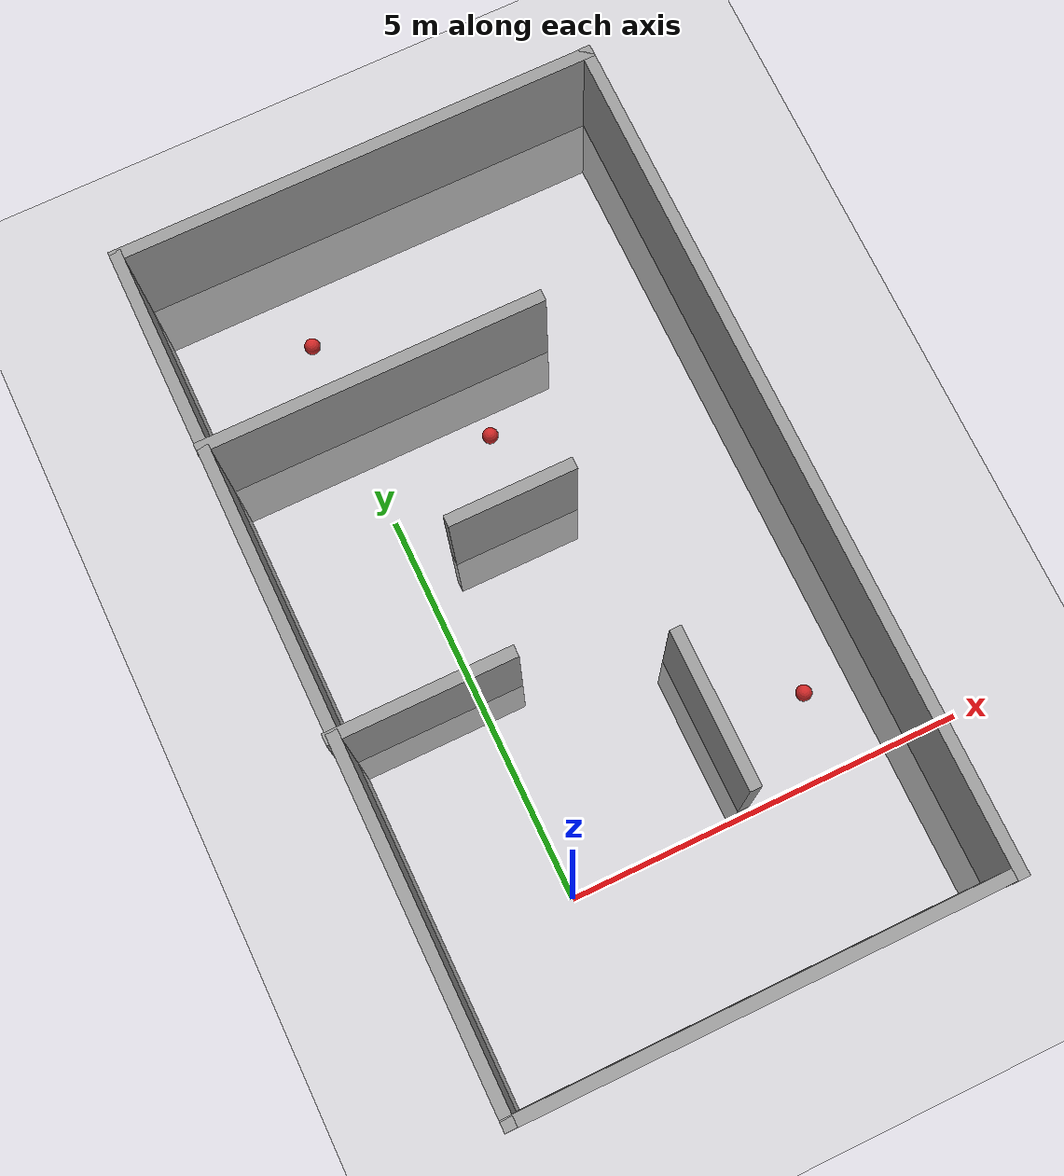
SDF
<sdf version="1.7">
 <world name="default">
  <light name="sun" type="directional">
   <pose>0 0 10 0 -0 0</pose>
   <diffuse>0.8 0.8 0.8 1</diffuse>
   <specular>0.2 0.2 0.2 1</specular>
   <attenuation>
    <range>1000</range>
    <constant>0.9</constant>
    <linear>0.01</linear>
    <quadratic>0.001</quadratic>
   </attenuation>
   <direction>-0.5 0.1 -0.9</direction>
   <spot><inner_angle>0</inner_angle><outer_angle>0</outer_angle><falloff>0</falloff></spot>
  </light>
  <model name="ground_plane">
   <static>1</static>
   <link name="link">
    <collision name="collision">
     <geometry><plane><normal>0 0 1</normal><size>100 100</size></plane></geometry>
     <surface><friction><ode><mu>100</mu><mu2>50</mu2></ode></friction></surface>
    </collision>
    <visual name="visual">
     <cast_shadows>0</cast_shadows>
     <geometry><plane><normal>0 0 1</normal><size>100 100</size></plane></geometry>
     <material>
      <script><uri>file://media/materials/scripts/gazebo.material</uri><name>Gazebo/Grey</name></script>
     </material>
    </visual>
   </link>
  </model>
  <gravity>0 0 -9.8</gravity>
  <magnetic_field>6e-06 2.3e-05 -4.2e-05</magnetic_field>
  <atmosphere type="adiabatic"/>
  <physics name="default_physics" default="0" type="ode">
   <max_step_size>0.001</max_step_size>
   <real_time_factor>1</real_time_factor>
   <real_time_update_rate>1000</real_time_update_rate>
  </physics>
  <scene><ambient>0.4 0.4 0.4 1</ambient><background>0.7 0.7 0.7 1</background><shadows>1</shadows></scene>
  <audio><device>default</device></audio>
  <spherical_coordinates>
   <surface_model>EARTH_WGS84</surface_model>
   <latitude_deg>0</latitude_deg>
   <longitude_deg>0</longitude_deg>
   <elevation>0</elevation>
   <heading_deg>0</heading_deg>
  </spherical_coordinates>
  <model name="maze_simple_0">
   <link name="Wall_11">
    <pose>-0.101906 0.822885 0 0 -0 0</pose>
    <inertial>
     <inertia><ixx>0</ixx><ixy>0</ixy><ixz>0</ixz><iyy>0</iyy><iyz>0</iyz><izz>0</izz></inertia>
     <mass>0</mass>
    </inertial>
    <visual name="Wall_11_Visual">
     <pose>0 0 0.15 0 -0 0</pose>
     <geometry><box><size>1.61952 0.15 3</size></box></geometry>
     <material>
      <script><uri>file://media/materials/scripts/gazebo.material</uri><name>Gazebo/Grey</name></script>
      <ambient>1 1 1 1</ambient>
      <shader type="pixel"/>
     </material>
     <meta><layer>0</layer></meta>
    </visual>
    <collision name="Wall_11_Collision">
     <pose>0 0 0.15 0 -0 0</pose>
     <geometry><box><size>1.61952 0.15 3</size></box></geometry>
     <surface>
      <friction>
       <ode><mu>1</mu><mu2>1</mu2><fdir1>0 0 0</fdir1><slip1>0</slip1><slip2>0</slip2></ode>
       <torsional>
        <coefficient>1</coefficient>
        <patch_radius>0</patch_radius>
        <surface_radius>0</surface_radius>
        <use_patch_radius>1</use_patch_radius>
        <ode><slip>0</slip></ode>
       </torsional>
      </friction>
      <bounce><restitution_coefficient>0</restitution_coefficient><threshold>1e+06</threshold></bounce>
      <contact>
       <collide_without_contact>0</collide_without_contact>
       <collide_without_contact_bitmask>1</collide_without_contact_bitmask>
       <collide_bitmask>1</collide_bitmask>
       <ode>
        <soft_cfm>0</soft_cfm>
        <soft_erp>0.2</soft_erp>
        <kp>1e+13</kp>
        <kd>1</kd>
        <max_vel>0.01</max_vel>
        <min_depth>0</min_depth>
       </ode>
       <bullet>
        <split_impulse>1</split_impulse>
        <split_impulse_penetration_threshold>-0.01</split_impulse_penetration_threshold>
        <soft_cfm>0</soft_cfm>
        <soft_erp>0.2</soft_erp>
        <kp>1e+13</kp>
        <kd>1</kd>
       </bullet>
      </contact>
     </surface>
    </collision>
   </link>
   <link name="Wall_12">
    <pose>0.884715 -2.38987 -0 0 0 -1.5708</pose>
    <visual name="Wall_12_Visual">
     <pose>0 0 0.15 0 -0 0</pose>
     <geometry><box><size>2 0.15 3</size></box></geometry>
     <material>
      <script><uri>file://media/materials/scripts/gazebo.material</uri><name>Gazebo/Grey</name></script>
      <ambient>1 1 1 1</ambient>
      <shader type="pixel"/>
     </material>
     <meta><layer>0</layer></meta>
    </visual>
    <collision name="Wall_12_Collision">
     <pose>0 0 0.15 0 -0 0</pose>
     <geometry><box><size>2 0.15 3</size></box></geometry>
     <surface>
      <friction>
       <ode><mu>1</mu><mu2>1</mu2><fdir1>0 0 0</fdir1><slip1>0</slip1><slip2>0</slip2></ode>
       <torsional>
        <coefficient>1</coefficient>
        <patch_radius>0</patch_radius>
        <surface_radius>0</surface_radius>
        <use_patch_radius>1</use_patch_radius>
        <ode><slip>0</slip></ode>
       </torsional>
      </friction>
      <bounce><restitution_coefficient>0</restitution_coefficient><threshold>1e+06</threshold></bounce>
      <contact>
       <collide_without_contact>0</collide_without_contact>
       <collide_without_contact_bitmask>1</collide_without_contact_bitmask>
       <collide_bitmask>1</collide_bitmask>
       <ode>
        <soft_cfm>0</soft_cfm>
        <soft_erp>0.2</soft_erp>
        <kp>1e+13</kp>
        <kd>1</kd>
        <max_vel>0.01</max_vel>
        <min_depth>0</min_depth>
       </ode>
       <bullet>
        <split_impulse>1</split_impulse>
        <split_impulse_penetration_threshold>-0.01</split_impulse_penetration_threshold>
        <soft_cfm>0</soft_cfm>
        <soft_erp>0.2</soft_erp>
        <kp>1e+13</kp>
        <kd>1</kd>
       </bullet>
      </contact>
     </surface>
    </collision>
   </link>
   <link name="Wall_16">
    <pose>-0.935679 2.8242 -0 0 -0 0</pose>
    <inertial>
     <inertia><ixx>0</ixx><ixy>0</ixy><ixz>0</ixz><iyy>0</iyy><iyz>0</iyz><izz>0</izz></inertia>
     <mass>0</mass>
    </inertial>
    <visual name="Wall_16_Visual">
     <pose>0 0 0.15 0 -0 0</pose>
     <geometry><box><size>4.37775 0.15 3</size></box></geometry>
     <material>
      <script><uri>file://media/materials/scripts/gazebo.material</uri><name>Gazebo/Grey</name></script>
      <ambient>1 1 1 1</ambient>
      <shader type="pixel"/>
     </material>
     <meta><layer>0</layer></meta>
    </visual>
    <collision name="Wall_16_Collision">
     <pose>0 0 0.15 0 -0 0</pose>
     <geometry><box><size>4.37775 0.15 3</size></box></geometry>
     <surface>
      <friction>
       <ode><mu>1</mu><mu2>1</mu2><fdir1>0 0 0</fdir1><slip1>0</slip1><slip2>0</slip2></ode>
       <torsional>
        <coefficient>1</coefficient>
        <patch_radius>0</patch_radius>
        <surface_radius>0</surface_radius>
        <use_patch_radius>1</use_patch_radius>
        <ode><slip>0</slip></ode>
       </torsional>
      </friction>
      <bounce><restitution_coefficient>0</restitution_coefficient><threshold>1e+06</threshold></bounce>
      <contact>
       <collide_without_contact>0</collide_without_contact>
       <collide_without_contact_bitmask>1</collide_without_contact_bitmask>
       <collide_bitmask>1</collide_bitmask>
       <ode>
        <soft_cfm>0</soft_cfm>
        <soft_erp>0.2</soft_erp>
        <kp>1e+13</kp>
        <kd>1</kd>
        <max_vel>0.01</max_vel>
        <min_depth>0</min_depth>
       </ode>
       <bullet>
        <split_impulse>1</split_impulse>
        <split_impulse_penetration_threshold>-0.01</split_impulse_penetration_threshold>
        <soft_cfm>0</soft_cfm>
        <soft_erp>0.2</soft_erp>
        <kp>1e+13</kp>
        <kd>1</kd>
       </bullet>
      </contact>
     </surface>
    </collision>
   </link>
   <link name="Wall_4">
    <pose>0.00675 -5.4147 -0 0 -0 0</pose>
    <visual name="Wall_4_Visual">
     <pose>0 0 0.15 0 -0 0</pose>
     <geometry><box><size>6.25 0.15 3</size></box></geometry>
     <material>
      <script><uri>file://media/materials/scripts/gazebo.material</uri><name>Gazebo/Grey</name></script>
      <ambient>1 1 1 1</ambient>
      <shader type="pixel"/>
     </material>
     <meta><layer>0</layer></meta>
    </visual>
    <collision name="Wall_4_Collision">
     <pose>0 0 0.15 0 -0 0</pose>
     <geometry><box><size>6.25 0.15 3</size></box></geometry>
     <surface>
      <friction>
       <ode><mu>1</mu><mu2>1</mu2><fdir1>0 0 0</fdir1><slip1>0</slip1><slip2>0</slip2></ode>
       <torsional>
        <coefficient>1</coefficient>
        <patch_radius>0</patch_radius>
        <surface_radius>0</surface_radius>
        <use_patch_radius>1</use_patch_radius>
        <ode><slip>0</slip></ode>
       </torsional>
      </friction>
      <bounce><restitution_coefficient>0</restitution_coefficient><threshold>1e+06</threshold></bounce>
      <contact>
       <collide_without_contact>0</collide_without_contact>
       <collide_without_contact_bitmask>1</collide_without_contact_bitmask>
       <collide_bitmask>1</collide_bitmask>
       <ode>
        <soft_cfm>0</soft_cfm>
        <soft_erp>0.2</soft_erp>
        <kp>1e+13</kp>
        <kd>1</kd>
        <max_vel>0.01</max_vel>
        <min_depth>0</min_depth>
       </ode>
       <bullet>
        <split_impulse>1</split_impulse>
        <split_impulse_penetration_threshold>-0.01</split_impulse_penetration_threshold>
        <soft_cfm>0</soft_cfm>
        <soft_erp>0.2</soft_erp>
        <kp>1e+13</kp>
        <kd>1</kd>
       </bullet>
      </contact>
     </surface>
    </collision>
   </link>
   <link name="Wall_5">
    <pose>3.05675 0 0 0 -0 1.5708</pose>
    <inertial>
     <inertia><ixx>0</ixx><ixy>0</ixy><ixz>0</ixz><iyy>0</iyy><iyz>0</iyz><izz>0</izz></inertia>
     <mass>0</mass>
    </inertial>
    <visual name="Wall_5_Visual">
     <pose>0 0 0.15 0 -0 0</pose>
     <geometry><box><size>10.9958 0.15 3</size></box></geometry>
     <material>
      <script><uri>file://media/materials/scripts/gazebo.material</uri><name>Gazebo/Grey</name></script>
      <ambient>1 1 1 1</ambient>
      <shader type="pixel"/>
     </material>
     <meta><layer>0</layer></meta>
    </visual>
    <collision name="Wall_5_Collision">
     <pose>0 0 0.15 0 -0 0</pose>
     <geometry><box><size>10.9958 0.15 3</size></box></geometry>
     <surface>
      <friction>
       <ode><mu>1</mu><mu2>1</mu2><fdir1>0 0 0</fdir1><slip1>0</slip1><slip2>0</slip2></ode>
       <torsional>
        <coefficient>1</coefficient>
        <patch_radius>0</patch_radius>
        <surface_radius>0</surface_radius>
        <use_patch_radius>1</use_patch_radius>
        <ode><slip>0</slip></ode>
       </torsional>
      </friction>
      <bounce><restitution_coefficient>0</restitution_coefficient><threshold>1e+06</threshold></bounce>
      <contact>
       <collide_without_contact>0</collide_without_contact>
       <collide_without_contact_bitmask>1</collide_without_contact_bitmask>
       <collide_bitmask>1</collide_bitmask>
       <ode>
        <soft_cfm>0</soft_cfm>
        <soft_erp>0.2</soft_erp>
        <kp>1e+13</kp>
        <kd>1</kd>
        <max_vel>0.01</max_vel>
        <min_depth>0</min_depth>
       </ode>
       <bullet>
        <split_impulse>1</split_impulse>
        <split_impulse_penetration_threshold>-0.01</split_impulse_penetration_threshold>
        <soft_cfm>0</soft_cfm>
        <soft_erp>0.2</soft_erp>
        <kp>1e+13</kp>
        <kd>1</kd>
       </bullet>
      </contact>
     </surface>
    </collision>
   </link>
   <link name="Wall_6">
    <pose>0.006756 5.41697 -0 0 -0 3.14159</pose>
    <visual name="Wall_6_Visual">
     <pose>0 0 0.15 0 -0 0</pose>
     <geometry><box><size>6.25 0.15 3</size></box></geometry>
     <material>
      <script><uri>file://media/materials/scripts/gazebo.material</uri><name>Gazebo/Grey</name></script>
      <ambient>1 1 1 1</ambient>
      <shader type="pixel"/>
     </material>
     <meta><layer>0</layer></meta>
    </visual>
    <collision name="Wall_6_Collision">
     <pose>0 0 0.15 0 -0 0</pose>
     <geometry><box><size>6.25 0.15 3</size></box></geometry>
     <surface>
      <friction>
       <ode><mu>1</mu><mu2>1</mu2><fdir1>0 0 0</fdir1><slip1>0</slip1><slip2>0</slip2></ode>
       <torsional>
        <coefficient>1</coefficient>
        <patch_radius>0</patch_radius>
        <surface_radius>0</surface_radius>
        <use_patch_radius>1</use_patch_radius>
        <ode><slip>0</slip></ode>
       </torsional>
      </friction>
      <bounce><restitution_coefficient>0</restitution_coefficient><threshold>1e+06</threshold></bounce>
      <contact>
       <collide_without_contact>0</collide_without_contact>
       <collide_without_contact_bitmask>1</collide_without_contact_bitmask>
       <collide_bitmask>1</collide_bitmask>
       <ode>
        <soft_cfm>0</soft_cfm>
        <soft_erp>0.2</soft_erp>
        <kp>1e+13</kp>
        <kd>1</kd>
        <max_vel>0.01</max_vel>
        <min_depth>0</min_depth>
       </ode>
       <bullet>
        <split_impulse>1</split_impulse>
        <split_impulse_penetration_threshold>-0.01</split_impulse_penetration_threshold>
        <soft_cfm>0</soft_cfm>
        <soft_erp>0.2</soft_erp>
        <kp>1e+13</kp>
        <kd>1</kd>
       </bullet>
      </contact>
     </surface>
    </collision>
   </link>
   <link name="Wall_7">
    <pose>-3.04325 0 0 0 0 -1.5708</pose>
    <inertial>
     <inertia><ixx>0</ixx><ixy>0</ixy><ixz>0</ixz><iyy>0</iyy><iyz>0</iyz><izz>0</izz></inertia>
     <mass>0</mass>
    </inertial>
    <visual name="Wall_7_Visual">
     <pose>0 0 0.15 0 -0 0</pose>
     <geometry><box><size>10.9696 0.15 3</size></box></geometry>
     <material>
      <script><uri>file://media/materials/scripts/gazebo.material</uri><name>Gazebo/Grey</name></script>
      <ambient>1 1 1 1</ambient>
      <shader type="pixel"><normal_map>__default__</normal_map></shader>
      <diffuse>0.7 0.7 0.7 1</diffuse>
      <specular>0.01 0.01 0.01 1</specular>
      <emissive>0 0 0 1</emissive>
     </material>
     <meta><layer>0</layer></meta>
    </visual>
    <collision name="Wall_7_Collision">
     <pose>0 0 0.15 0 -0 0</pose>
     <geometry><box><size>11.8412 0.15 3</size></box></geometry>
     <surface>
      <friction>
       <ode><mu>1</mu><mu2>1</mu2><fdir1>0 0 0</fdir1><slip1>0</slip1><slip2>0</slip2></ode>
       <torsional>
        <coefficient>1</coefficient>
        <patch_radius>0</patch_radius>
        <surface_radius>0</surface_radius>
        <use_patch_radius>1</use_patch_radius>
        <ode><slip>0</slip></ode>
       </torsional>
      </friction>
      <bounce><restitution_coefficient>0</restitution_coefficient><threshold>1e+06</threshold></bounce>
      <contact>
       <collide_without_contact>0</collide_without_contact>
       <collide_without_contact_bitmask>1</collide_without_contact_bitmask>
       <collide_bitmask>1</collide_bitmask>
       <ode>
        <soft_cfm>0</soft_cfm>
        <soft_erp>0.2</soft_erp>
        <kp>1e+13</kp>
        <kd>1</kd>
        <max_vel>0.01</max_vel>
        <min_depth>0</min_depth>
       </ode>
       <bullet>
        <split_impulse>1</split_impulse>
        <split_impulse_penetration_threshold>-0.01</split_impulse_penetration_threshold>
        <soft_cfm>0</soft_cfm>
        <soft_erp>0.2</soft_erp>
        <kp>1e+13</kp>
        <kd>1</kd>
       </bullet>
      </contact>
     </surface>
    </collision>
   </link>
   <link name="Wall_9">
    <pose>-1.9867 -0.866433 -0 0 -0 0</pose>
    <inertial>
     <inertia><ixx>0</ixx><ixy>0</ixy><ixz>0</ixz><iyy>0</iyy><iyz>0</iyz><izz>0</izz></inertia>
     <mass>0</mass>
    </inertial>
    <visual name="Wall_9_Visual">
     <pose>0 0 0.15 0 -0 0</pose>
     <geometry><box><size>2.33116 0.15 3</size></box></geometry>
     <material>
      <script><uri>file://media/materials/scripts/gazebo.material</uri><name>Gazebo/Grey</name></script>
      <ambient>1 1 1 1</ambient>
      <shader type="pixel"/>
     </material>
     <meta><layer>0</layer></meta>
    </visual>
    <collision name="Wall_9_Collision">
     <pose>0 0 0.15 0 -0 0</pose>
     <geometry><box><size>2.33116 0.15 3</size></box></geometry>
     <surface>
      <friction>
       <ode><mu>1</mu><mu2>1</mu2><fdir1>0 0 0</fdir1><slip1>0</slip1><slip2>0</slip2></ode>
       <torsional>
        <coefficient>1</coefficient>
        <patch_radius>0</patch_radius>
        <surface_radius>0</surface_radius>
        <use_patch_radius>1</use_patch_radius>
        <ode><slip>0</slip></ode>
       </torsional>
      </friction>
      <bounce><restitution_coefficient>0</restitution_coefficient><threshold>1e+06</threshold></bounce>
      <contact>
       <collide_without_contact>0</collide_without_contact>
       <collide_without_contact_bitmask>1</collide_without_contact_bitmask>
       <collide_bitmask>1</collide_bitmask>
       <ode>
        <soft_cfm>0</soft_cfm>
        <soft_erp>0.2</soft_erp>
        <kp>1e+13</kp>
        <kd>1</kd>
        <max_vel>0.01</max_vel>
        <min_depth>0</min_depth>
       </ode>
       <bullet>
        <split_impulse>1</split_impulse>
        <split_impulse_penetration_threshold>-0.01</split_impulse_penetration_threshold>
        <soft_cfm>0</soft_cfm>
        <soft_erp>0.2</soft_erp>
        <kp>1e+13</kp>
        <kd>1</kd>
       </bullet>
      </contact>
     </surface>
    </collision>
   </link>
   <static>1</static>
   <pose>1.36318 3.47341 0 0 -0 0</pose>
  </model>
  <model name="red_unit_sphere">
   <link name="link">
    <inertial>
     <mass>1</mass>
     <inertia><ixx>0.1</ixx><ixy>0</ixy><ixz>0</ixz><iyy>0.1</iyy><iyz>0</iyz><izz>0.1</izz></inertia>
    </inertial>
    <visual name="visual">
     <geometry><sphere><radius>0.1</radius></sphere></geometry>
     <material>
      <script><name>Gazebo/Red</name><uri>file://media/materials/scripts/gazebo.material</uri></script>
      <shader type="pixel"><normal_map>__default__</normal_map></shader>
      <ambient>1 0 0 1</ambient>
      <diffuse>1 0 0 1</diffuse>
      <specular>0.1 0.1 0.1 1</specular>
      <emissive>0 0 0 1</emissive>
     </material>
    </visual>
    <collision name="collision">
     <geometry><sphere><radius>0.1</radius></sphere></geometry>
     <surface>
      <friction>
       <ode><mu>1</mu><mu2>1</mu2><fdir1>0 0 0</fdir1><slip1>0</slip1><slip2>0</slip2></ode>
       <torsional>
        <coefficient>1</coefficient>
        <patch_radius>0</patch_radius>
        <surface_radius>0</surface_radius>
        <use_patch_radius>1</use_patch_radius>
        <ode><slip>0</slip></ode>
       </torsional>
      </friction>
      <bounce><restitution_coefficient>0</restitution_coefficient><threshold>1e+06</threshold></bounce>
      <contact>
       <collide_without_contact>0</collide_without_contact>
       <collide_without_contact_bitmask>1</collide_without_contact_bitmask>
       <collide_bitmask>1</collide_bitmask>
       <ode>
        <soft_cfm>0</soft_cfm>
        <soft_erp>0.2</soft_erp>
        <kp>1e+13</kp>
        <kd>1</kd>
        <max_vel>0.01</max_vel>
        <min_depth>0</min_depth>
       </ode>
       <bullet>
        <split_impulse>1</split_impulse>
        <split_impulse_penetration_threshold>-0.01</split_impulse_penetration_threshold>
        <soft_cfm>0</soft_cfm>
        <soft_erp>0.2</soft_erp>
        <kp>1e+13</kp>
        <kd>1</kd>
       </bullet>
      </contact>
     </surface>
    </collision>
   </link>
   <static>0</static>
   <pose>3.5 1.0 0.1 0 -0 0</pose>
  </model>
  <model name="red_unit_sphere_clone">
   <link name="link">
    <inertial>
     <mass>1</mass>
     <inertia><ixx>0.1</ixx><ixy>0</ixy><ixz>0</ixz><iyy>0.1</iyy><iyz>0</iyz><izz>0.1</izz></inertia>
    </inertial>
    <visual name="visual">
     <geometry><sphere><radius>0.1</radius></sphere></geometry>
     <material>
      <script><name>Gazebo/Red</name><uri>file://media/materials/scripts/gazebo.material</uri></script>
      <shader type="pixel"><normal_map>__default__</normal_map></shader>
      <ambient>1 0 0 1</ambient>
      <diffuse>1 0 0 1</diffuse>
      <specular>0.1 0.1 0.1 1</specular>
      <emissive>0 0 0 1</emissive>
     </material>
    </visual>
    <collision name="collision">
     <geometry><sphere><radius>0.1</radius></sphere></geometry>
     <surface>
      <friction>
       <ode><mu>1</mu><mu2>1</mu2><fdir1>0 0 0</fdir1><slip1>0</slip1><slip2>0</slip2></ode>
       <torsional>
        <coefficient>1</coefficient>
        <patch_radius>0</patch_radius>
        <surface_radius>0</surface_radius>
        <use_patch_radius>1</use_patch_radius>
        <ode><slip>0</slip></ode>
       </torsional>
      </friction>
      <bounce><restitution_coefficient>0</restitution_coefficient><threshold>1e+06</threshold></bounce>
      <contact>
       <collide_without_contact>0</collide_without_contact>
       <collide_without_contact_bitmask>1</collide_without_contact_bitmask>
       <collide_bitmask>1</collide_bitmask>
       <ode>
        <soft_cfm>0</soft_cfm>
        <soft_erp>0.2</soft_erp>
        <kp>1e+13</kp>
        <kd>1</kd>
        <max_vel>0.01</max_vel>
        <min_depth>0</min_depth>
       </ode>
       <bullet>
        <split_impulse>1</split_impulse>
        <split_impulse_penetration_threshold>-0.01</split_impulse_penetration_threshold>
        <soft_cfm>0</soft_cfm>
        <soft_erp>0.2</soft_erp>
        <kp>1e+13</kp>
        <kd>1</kd>
       </bullet>
      </contact>
     </surface>
    </collision>
   </link>
   <static>0</static>
   <pose>1.5 5.5 0.1 0 -0 0</pose>
  </model>
  <model name="red_unit_sphere_clone_clone">
   <link name="link">
    <inertial>
     <mass>1</mass>
     <inertia><ixx>0.1</ixx><ixy>0</ixy><ixz>0</ixz><iyy>0.1</iyy><iyz>0</iyz><izz>0.1</izz></inertia>
    </inertial>
    <visual name="visual">
     <geometry><sphere><radius>0.1</radius></sphere></geometry>
     <material>
      <script><name>Gazebo/Red</name><uri>file://media/materials/scripts/gazebo.material</uri></script>
      <shader type="pixel"><normal_map>__default__</normal_map></shader>
      <ambient>1 0 0 1</ambient>
      <diffuse>1 0 0 1</diffuse>
      <specular>0.1 0.1 0.1 1</specular>
      <emissive>0 0 0 1</emissive>
     </material>
    </visual>
    <collision name="collision">
     <geometry><sphere><radius>0.1</radius></sphere></geometry>
     <surface>
      <friction>
       <ode><mu>1</mu><mu2>1</mu2><fdir1>0 0 0</fdir1><slip1>0</slip1><slip2>0</slip2></ode>
       <torsional>
        <coefficient>1</coefficient>
        <patch_radius>0</patch_radius>
        <surface_radius>0</surface_radius>
        <use_patch_radius>1</use_patch_radius>
        <ode><slip>0</slip></ode>
       </torsional>
      </friction>
      <bounce><restitution_coefficient>0</restitution_coefficient><threshold>1e+06</threshold></bounce>
      <contact>
       <collide_without_contact>0</collide_without_contact>
       <collide_without_contact_bitmask>1</collide_without_contact_bitmask>
       <collide_bitmask>1</collide_bitmask>
       <ode>
        <soft_cfm>0</soft_cfm>
        <soft_erp>0.2</soft_erp>
        <kp>1e+13</kp>
        <kd>1</kd>
        <max_vel>0.01</max_vel>
        <min_depth>0</min_depth>
       </ode>
       <bullet>
        <split_impulse>1</split_impulse>
        <split_impulse_penetration_threshold>-0.01</split_impulse_penetration_threshold>
        <soft_cfm>0</soft_cfm>
        <soft_erp>0.2</soft_erp>
        <kp>1e+13</kp>
        <kd>1</kd>
       </bullet>
      </contact>
     </surface>
    </collision>
   </link>
   <static>0</static>
   <pose>0.0 7.5 0.1 0 -0 0</pose>
  </model>
 </world>
</sdf>
